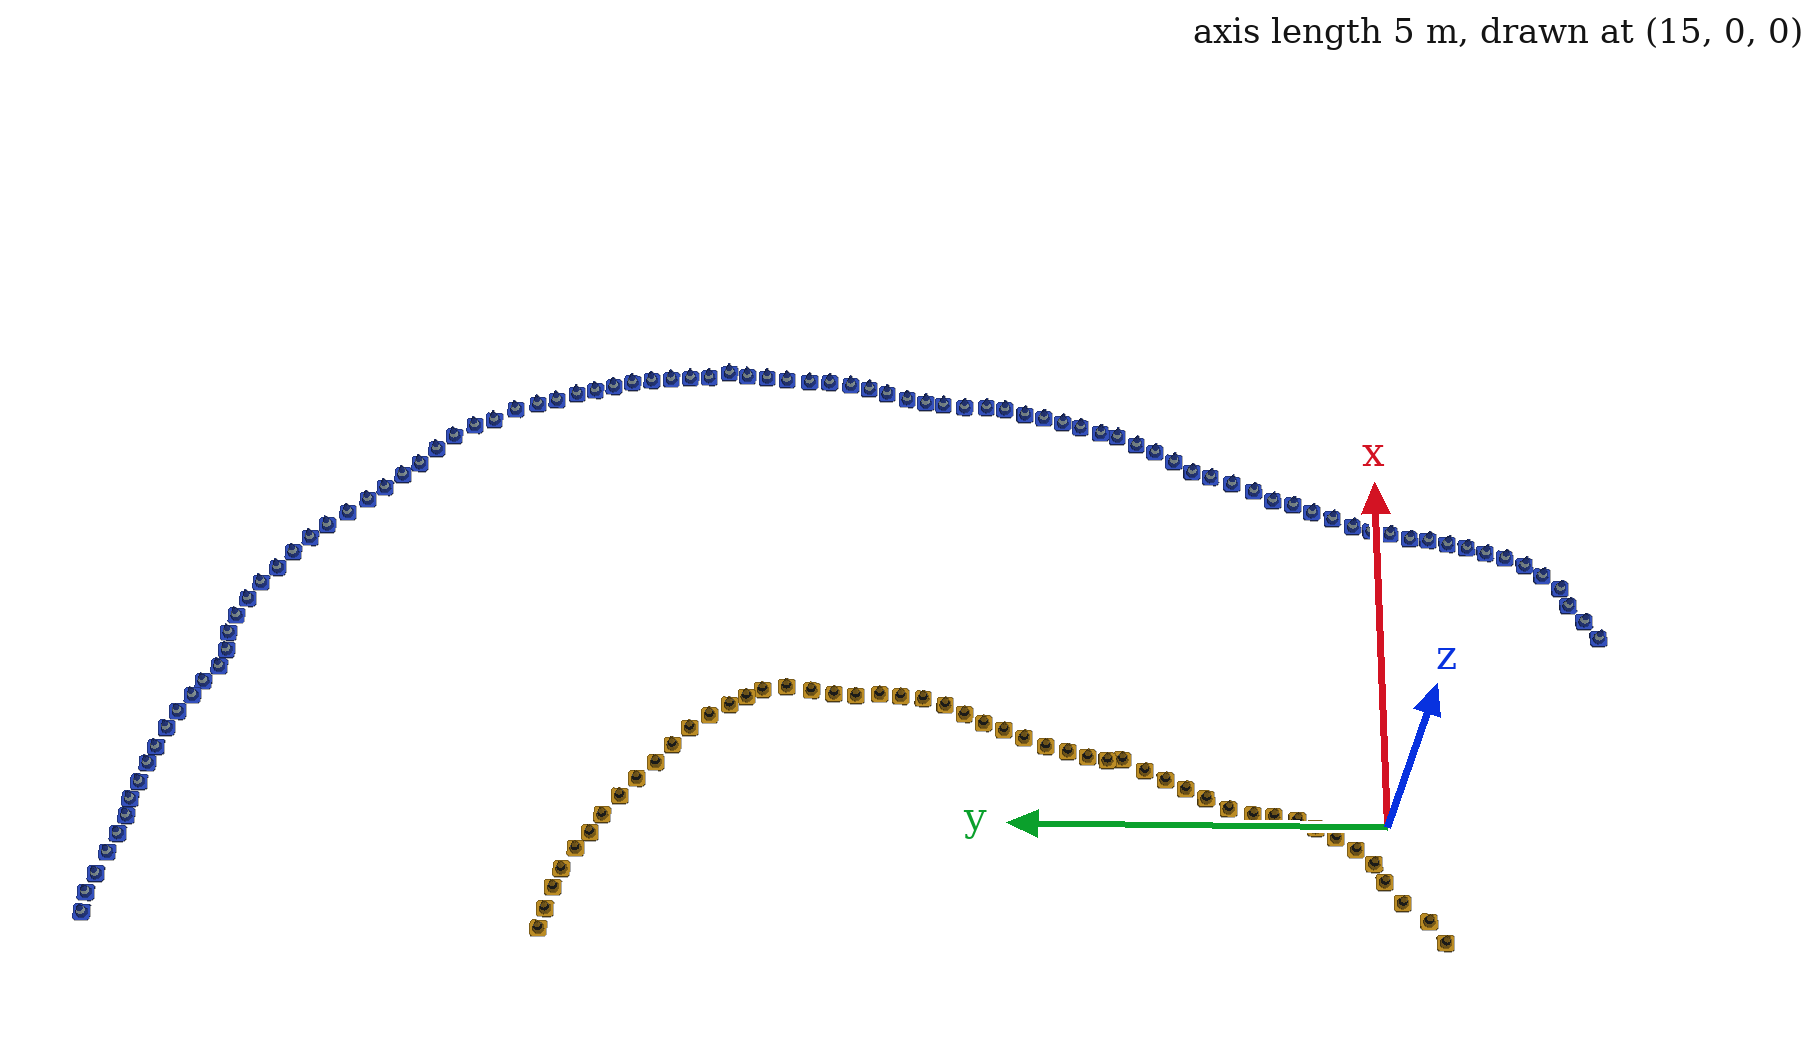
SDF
<sdf version="1.6">
 <model name="small_track">
  <link name="link_0_clone_0_clone_clone_clone_57">
   <pose>13.4277 11.0714 0.083534 0.001019 -0.000437 -0.000128</pose>
   <visual name="visual">
    <geometry><mesh><uri>model://eufs_description/meshes/cone_yellow.dae</uri></mesh></geometry>
    <material><shader type="pixel"/></material>
   </visual>
  </link>
  <link name="link_0_clone_0_clone_clone_clone_58">
   <pose>13.698 10.9948 0.083534 0.001019 -0.000437 -0.000128</pose>
   <visual name="visual">
    <geometry><mesh><uri>model://eufs_description/meshes/cone_yellow.dae</uri></mesh></geometry>
    <material><shader type="pixel"/></material>
   </visual>
  </link>
  <link name="link_0_clone_0_clone_clone_clone_59">
   <pose>13.9913 10.9033 0.083534 0.001019 -0.000437 -0.000128</pose>
   <visual name="visual">
    <geometry><mesh><uri>model://eufs_description/meshes/cone_yellow.dae</uri></mesh></geometry>
    <material><shader type="pixel"/></material>
   </visual>
  </link>
  <link name="link_0_clone_0_clone_clone_clone_60">
   <pose>14.2465 10.8048 0.083534 0.001019 -0.000437 -0.000128</pose>
   <visual name="visual">
    <geometry><mesh><uri>model://eufs_description/meshes/cone_yellow.dae</uri></mesh></geometry>
    <material><shader type="pixel"/></material>
   </visual>
  </link>
  <link name="link_0_clone_0_clone_clone_clone_61">
   <pose>14.5336 10.6322 0.083534 0.001019 -0.000437 -0.000128</pose>
   <visual name="visual">
    <geometry><mesh><uri>model://eufs_description/meshes/cone_yellow.dae</uri></mesh></geometry>
    <material><shader type="pixel"/></material>
   </visual>
  </link>
  <link name="link_0_clone_0_clone_clone_clone_62">
   <pose>14.7528 10.4528 0.083534 0.001019 -0.000437 -0.000128</pose>
   <visual name="visual">
    <geometry><mesh><uri>model://eufs_description/meshes/cone_yellow.dae</uri></mesh></geometry>
    <material><shader type="pixel"/></material>
   </visual>
  </link>
  <link name="link_0_clone_0_clone_clone_clone_63">
   <pose>15.0051 10.3006 0.083534 0.001019 -0.000437 -0.000128</pose>
   <visual name="visual">
    <geometry><mesh><uri>model://eufs_description/meshes/cone_yellow.dae</uri></mesh></geometry>
    <material><shader type="pixel"/></material>
   </visual>
  </link>
  <link name="link_0_clone_0_clone_clone_clone_64">
   <pose>15.5193 9.86586 0.083534 0.001019 -0.000437 -0.000128</pose>
   <visual name="visual">
    <geometry><mesh><uri>model://eufs_description/meshes/cone_yellow.dae</uri></mesh></geometry>
    <material><shader type="pixel"/></material>
   </visual>
  </link>
  <link name="link_0_clone_0_clone_clone_clone_65">
   <pose>15.7485 9.62299 0.083534 0.001019 -0.000437 -0.000128</pose>
   <visual name="visual">
    <geometry><mesh><uri>model://eufs_description/meshes/cone_yellow.dae</uri></mesh></geometry>
    <material><shader type="pixel"/></material>
   </visual>
  </link>
  <link name="link_0_clone_0_clone_clone_clone_66">
   <pose>15.9997 9.41122 0.083534 0.001019 -0.000437 -0.000128</pose>
   <visual name="visual">
    <geometry><mesh><uri>model://eufs_description/meshes/cone_yellow.dae</uri></mesh></geometry>
    <material><shader type="pixel"/></material>
   </visual>
  </link>
  <link name="link_0_clone_0_clone_clone_clone_67">
   <pose>16.2435 9.1883 0.083534 0.001019 -0.000437 -0.000128</pose>
   <visual name="visual">
    <geometry><mesh><uri>model://eufs_description/meshes/cone_yellow.dae</uri></mesh></geometry>
    <material><shader type="pixel"/></material>
   </visual>
  </link>
  <link name="link_0_clone_0_clone_clone_clone_68">
   <pose>16.4266 8.93302 0.083534 0.001019 -0.000437 -0.000128</pose>
   <visual name="visual">
    <geometry><mesh><uri>model://eufs_description/meshes/cone_yellow.dae</uri></mesh></geometry>
    <material><shader type="pixel"/></material>
   </visual>
  </link>
  <link name="link_0_clone_0_clone_clone_clone_69">
   <pose>16.5817 8.66908 0.083534 0.001019 -0.000437 -0.000128</pose>
   <visual name="visual">
    <geometry><mesh><uri>model://eufs_description/meshes/cone_yellow.dae</uri></mesh></geometry>
    <material><shader type="pixel"/></material>
   </visual>
  </link>
  <link name="link_0_clone_0_clone_clone_clone_70">
   <pose>16.697 8.44928 0.083534 0.001019 -0.000437 -0.000128</pose>
   <visual name="visual">
    <geometry><mesh><uri>model://eufs_description/meshes/cone_yellow.dae</uri></mesh></geometry>
    <material><shader type="pixel"/></material>
   </visual>
  </link>
  <link name="link_0_clone_0_clone_clone_clone_71">
   <pose>16.8486 7.91948 0.083534 0.001019 -0.000437 -0.000128</pose>
   <visual name="visual">
    <geometry><mesh><uri>model://eufs_description/meshes/cone_yellow.dae</uri></mesh></geometry>
    <material><shader type="pixel"/></material>
   </visual>
  </link>
  <link name="link_0_clone_0_clone_clone_clone_72">
   <pose>16.7994 7.59175 0.083534 0.001019 -0.000437 -0.000128</pose>
   <visual name="visual">
    <geometry><mesh><uri>model://eufs_description/meshes/cone_yellow.dae</uri></mesh></geometry>
    <material><shader type="pixel"/></material>
   </visual>
  </link>
  <link name="link_0_clone_0_clone_clone_clone_73">
   <pose>16.7576 7.28994 0.083534 0.001019 -0.000437 -0.000128</pose>
   <visual name="visual">
    <geometry><mesh><uri>model://eufs_description/meshes/cone_yellow.dae</uri></mesh></geometry>
    <material><shader type="pixel"/></material>
   </visual>
  </link>
  <link name="link_0_clone_0_clone_clone_clone_74">
   <pose>16.7338 7.00158 0.083534 0.001019 -0.000437 -0.000128</pose>
   <visual name="visual">
    <geometry><mesh><uri>model://eufs_description/meshes/cone_yellow.dae</uri></mesh></geometry>
    <material><shader type="pixel"/></material>
   </visual>
  </link>
  <link name="link_0_clone_0_clone_clone_clone_75">
   <pose>16.758 6.68601 0.083534 0.001019 -0.000437 -0.000128</pose>
   <visual name="visual">
    <geometry><mesh><uri>model://eufs_description/meshes/cone_yellow.dae</uri></mesh></geometry>
    <material><shader type="pixel"/></material>
   </visual>
  </link>
  <link name="link_0_clone_0_clone_clone_clone_76">
   <pose>16.731 6.40446 0.083534 0.001019 -0.000437 -0.000128</pose>
   <visual name="visual">
    <geometry><mesh><uri>model://eufs_description/meshes/cone_yellow.dae</uri></mesh></geometry>
    <material><shader type="pixel"/></material>
   </visual>
  </link>
  <link name="link_0_clone_0_clone_clone_clone_77">
   <pose>16.6162 5.81607 0.083534 0.001019 -0.000437 -0.000128</pose>
   <visual name="visual">
    <geometry><mesh><uri>model://eufs_description/meshes/cone_yellow.dae</uri></mesh></geometry>
    <material><shader type="pixel"/></material>
   </visual>
  </link>
  <link name="link_0_clone_0_clone_clone_clone_78">
   <pose>16.486 5.56298 0.083534 0.001019 -0.000437 -0.000128</pose>
   <visual name="visual">
    <geometry><mesh><uri>model://eufs_description/meshes/cone_yellow.dae</uri></mesh></geometry>
    <material><shader type="pixel"/></material>
   </visual>
  </link>
  <link name="link_0_clone_0_clone_clone_clone_79">
   <pose>16.3622 5.30817 0.083534 0.001019 -0.000437 -0.000128</pose>
   <visual name="visual">
    <geometry><mesh><uri>model://eufs_description/meshes/cone_yellow.dae</uri></mesh></geometry>
    <material><shader type="pixel"/></material>
   </visual>
  </link>
  <link name="link_0_clone_0_clone_clone_clone_80">
   <pose>16.2707 5.03968 0.083534 0.001019 -0.000437 -0.000128</pose>
   <visual name="visual">
    <geometry><mesh><uri>model://eufs_description/meshes/cone_yellow.dae</uri></mesh></geometry>
    <material><shader type="pixel"/></material>
   </visual>
  </link>
  <link name="link_0_clone_0_clone_clone_clone_81">
   <pose>16.1614 4.77403 0.083534 0.001019 -0.000437 -0.000128</pose>
   <visual name="visual">
    <geometry><mesh><uri>model://eufs_description/meshes/cone_yellow.dae</uri></mesh></geometry>
    <material><shader type="pixel"/></material>
   </visual>
  </link>
  <link name="link_0_clone_0_clone_clone_clone_82">
   <pose>16.0461 4.48814 0.083534 0.001019 -0.000437 -0.000128</pose>
   <visual name="visual">
    <geometry><mesh><uri>model://eufs_description/meshes/cone_yellow.dae</uri></mesh></geometry>
    <material><shader type="pixel"/></material>
   </visual>
  </link>
  <link name="link_0_clone_0_clone_clone_clone_83">
   <pose>15.9775 4.19783 0.083534 0.001019 -0.000437 -0.000128</pose>
   <visual name="visual">
    <geometry><mesh><uri>model://eufs_description/meshes/cone_yellow.dae</uri></mesh></geometry>
    <material><shader type="pixel"/></material>
   </visual>
  </link>
  <link name="link_0_clone_0_clone_clone_clone_84">
   <pose>15.9027 3.9368 0.083534 0.001019 -0.000437 -0.000128</pose>
   <visual name="visual">
    <geometry><mesh><uri>model://eufs_description/meshes/cone_yellow.dae</uri></mesh></geometry>
    <material><shader type="pixel"/></material>
   </visual>
  </link>
  <link name="link_0_clone_0_clone_clone_clone_85">
   <pose>15.8584 3.67754 0.083534 0.001019 -0.000437 -0.000128</pose>
   <visual name="visual">
    <geometry><mesh><uri>model://eufs_description/meshes/cone_yellow.dae</uri></mesh></geometry>
    <material><shader type="pixel"/></material>
   </visual>
  </link>
  <link name="link_0_clone_0_clone_clone_clone_86">
   <pose>15.7215 3.18695 0.083534 0.001019 -0.000437 -0.000128</pose>
   <visual name="visual">
    <geometry><mesh><uri>model://eufs_description/meshes/cone_yellow.dae</uri></mesh></geometry>
    <material><shader type="pixel"/></material>
   </visual>
  </link>
  <link name="link_0_clone_0_clone_clone_clone_87">
   <pose>15.594 2.91621 0.083534 0.001019 -0.000437 -0.000128</pose>
   <visual name="visual">
    <geometry><mesh><uri>model://eufs_description/meshes/cone_yellow.dae</uri></mesh></geometry>
    <material><shader type="pixel"/></material>
   </visual>
  </link>
  <link name="link_0_clone_0_clone_clone_clone_88">
   <pose>15.4719 2.65255 0.083534 0.001019 -0.000437 -0.000128</pose>
   <visual name="visual">
    <geometry><mesh><uri>model://eufs_description/meshes/cone_yellow.dae</uri></mesh></geometry>
    <material><shader type="pixel"/></material>
   </visual>
  </link>
  <link name="link_0_clone_0_clone_clone_clone_89">
   <pose>15.3405 2.38492 0.083534 0.001019 -0.000437 -0.000128</pose>
   <visual name="visual">
    <geometry><mesh><uri>model://eufs_description/meshes/cone_yellow.dae</uri></mesh></geometry>
    <material><shader type="pixel"/></material>
   </visual>
  </link>
  <link name="link_0_clone_0_clone_clone_clone_90">
   <pose>15.202 2.09582 0.083534 0.001019 -0.000437 -0.000128</pose>
   <visual name="visual">
    <geometry><mesh><uri>model://eufs_description/meshes/cone_yellow.dae</uri></mesh></geometry>
    <material><shader type="pixel"/></material>
   </visual>
  </link>
  <link name="link_0_clone_0_clone_clone_clone_91">
   <pose>15.1249 1.77613 0.083534 0.001019 -0.000437 -0.000128</pose>
   <visual name="visual">
    <geometry><mesh><uri>model://eufs_description/meshes/cone_yellow.dae</uri></mesh></geometry>
    <material><shader type="pixel"/></material>
   </visual>
  </link>
  <link name="link_0_clone_0_clone_clone_clone_92">
   <pose>15.0541 1.1972 0.083534 0.001019 -0.000437 -0.000128</pose>
   <visual name="visual">
    <geometry><mesh><uri>model://eufs_description/meshes/cone_yellow.dae</uri></mesh></geometry>
    <material><shader type="pixel"/></material>
   </visual>
  </link>
  <link name="link_0_clone_0_clone_clone_clone_93">
   <pose>14.9448 0.958641 0.083534 0.001019 -0.000437 -0.000128</pose>
   <visual name="visual">
    <geometry><mesh><uri>model://eufs_description/meshes/cone_yellow.dae</uri></mesh></geometry>
    <material><shader type="pixel"/></material>
   </visual>
  </link>
  <link name="link_0_clone_0_clone_clone_clone_94">
   <pose>14.8155 0.70317 0.083534 0.001019 -0.000437 -0.000128</pose>
   <visual name="visual">
    <geometry><mesh><uri>model://eufs_description/meshes/cone_yellow.dae</uri></mesh></geometry>
    <material><shader type="pixel"/></material>
   </visual>
  </link>
  <link name="link_0_clone_0_clone_clone_clone_95">
   <pose>14.6532 0.444382 0.083534 0.001019 -0.000437 -0.000128</pose>
   <visual name="visual">
    <geometry><mesh><uri>model://eufs_description/meshes/cone_yellow.dae</uri></mesh></geometry>
    <material><shader type="pixel"/></material>
   </visual>
  </link>
  <link name="link_0_clone_0_clone_clone_clone_96">
   <pose>14.4572 0.215121 0.083534 0.001019 -0.000437 -0.000128</pose>
   <visual name="visual">
    <geometry><mesh><uri>model://eufs_description/meshes/cone_yellow.dae</uri></mesh></geometry>
    <material><shader type="pixel"/></material>
   </visual>
  </link>
  <link name="link_0_clone_0_clone_clone_clone_97">
   <pose>14.2076 0.08526 0.083534 0.001019 -0.000437 -0.000128</pose>
   <visual name="visual">
    <geometry><mesh><uri>model://eufs_description/meshes/cone_yellow.dae</uri></mesh></geometry>
    <material><shader type="pixel"/></material>
   </visual>
  </link>
  <link name="link_0_clone_0_clone_clone_clone_98">
   <pose>13.9222 -0.138985 0.083534 0.001019 -0.000437 -0.000128</pose>
   <visual name="visual">
    <geometry><mesh><uri>model://eufs_description/meshes/cone_yellow.dae</uri></mesh></geometry>
    <material><shader type="pixel"/></material>
   </visual>
  </link>
  <link name="link_0_clone_0_clone_clone_clone_99">
   <pose>13.3874 -0.675219 0.083534 0.001019 -0.000437 -0.000128</pose>
   <visual name="visual">
    <geometry><mesh><uri>model://eufs_description/meshes/cone_yellow.dae</uri></mesh></geometry>
    <material><shader type="pixel"/></material>
   </visual>
  </link>
  <link name="link_0_clone_15">
   <pose>15.1389 16.5025 0.082223 0 -0 0</pose>
   <visual name="visual">
    <geometry><mesh><uri>model://eufs_description/meshes/cone_blue.dae</uri></mesh></geometry>
    <material><shader type="pixel"/></material>
   </visual>
  </link>
  <link name="link_0_clone_16">
   <pose>15.2725 10.0791 0.08035 0 -0 0</pose>
   <visual name="visual">
    <geometry><mesh><uri>model://eufs_description/meshes/cone_yellow.dae</uri></mesh></geometry>
    <material><shader type="pixel"/></material>
   </visual>
  </link>
  <link name="link_0_clone_17">
   <pose>19.5034 13.6361 0.079669 0 -0 0</pose>
   <visual name="visual">
    <geometry><mesh><uri>model://eufs_description/meshes/cone_blue.dae</uri></mesh></geometry>
    <material><shader type="pixel"/></material>
   </visual>
  </link>
  <link name="link_0_clone_17_clone">
   <pose>20.8922 11.7012 0.056623 -0.001555 0.00019 -5.2e-05</pose>
   <visual name="visual">
    <geometry><mesh><uri>model://eufs_description/meshes/cone_blue.dae</uri></mesh></geometry>
    <material><shader type="pixel"/></material>
   </visual>
  </link>
  <link name="link_0_clone_17_clone_0">
   <pose>17.5221 15.3812 0.082077 -0.001555 0.00019 -5.2e-05</pose>
   <visual name="visual">
    <geometry><mesh><uri>model://eufs_description/meshes/cone_blue.dae</uri></mesh></geometry>
    <material><shader type="pixel"/></material>
   </visual>
  </link>
  <link name="link_0_clone_18">
   <pose>16.8037 8.23821 0.079433 0 -0 0</pose>
   <visual name="visual">
    <geometry><mesh><uri>model://eufs_description/meshes/cone_yellow.dae</uri></mesh></geometry>
    <material><shader type="pixel"/></material>
   </visual>
  </link>
  <link name="link_0_clone_19">
   <pose>21.4761 8.79574 0.079001 0 -0 0</pose>
   <visual name="visual">
    <geometry><mesh><uri>model://eufs_description/meshes/cone_blue.dae</uri></mesh></geometry>
    <material><shader type="pixel"/></material>
   </visual>
  </link>
  <link name="link_0_clone_20">
   <pose>20.9992 5.27662 0.079001 0 -0 0</pose>
   <visual name="visual">
    <geometry><mesh><uri>model://eufs_description/meshes/cone_blue.dae</uri></mesh></geometry>
    <material><shader type="pixel"/></material>
   </visual>
  </link>
  <link name="link_0_clone_21">
   <pose>16.7063 6.10772 0.079001 0 -0 0</pose>
   <visual name="visual">
    <geometry><mesh><uri>model://eufs_description/meshes/cone_yellow.dae</uri></mesh></geometry>
    <material><shader type="pixel"/></material>
   </visual>
  </link>
  <link name="link_0_clone_22">
   <pose>19.9925 2.24053 0.079001 0 -0 0</pose>
   <visual name="visual">
    <geometry><mesh><uri>model://eufs_description/meshes/cone_blue.dae</uri></mesh></geometry>
    <material><shader type="pixel"/></material>
   </visual>
  </link>
  <link name="link_0_clone_23">
   <pose>15.876 3.47906 0.079001 0 -0 0</pose>
   <visual name="visual">
    <geometry><mesh><uri>model://eufs_description/meshes/cone_yellow.dae</uri></mesh></geometry>
    <material><shader type="pixel"/></material>
   </visual>
  </link>
  <link name="link_0_clone_24">
   <pose>15.106 1.5027 0.079001 0 -0 0</pose>
   <visual name="visual">
    <geometry><mesh><uri>model://eufs_description/meshes/cone_yellow.dae</uri></mesh></geometry>
    <material><shader type="pixel"/></material>
   </visual>
  </link>
  <link name="link_0_clone_25">
   <pose>19.0983 -0.671871 0.079001 0 -0 0</pose>
   <visual name="visual">
    <geometry><mesh><uri>model://eufs_description/meshes/cone_blue.dae</uri></mesh></geometry>
    <material><shader type="pixel"/></material>
   </visual>
  </link>
  <link name="link_0_clone_26">
   <pose>13.6765 -0.472612 0.079001 0 -0 0</pose>
   <visual name="visual">
    <geometry><mesh><uri>model://eufs_description/meshes/cone_yellow.dae</uri></mesh></geometry>
    <material><shader type="pixel"/></material>
   </visual>
  </link>
  <link name="link_0_clone_62_clone_100">
   <pose>15.652 16.317 0.063291 -0.001555 0.00019 -5.2e-05</pose>
   <visual name="visual">
    <geometry><mesh><uri>model://eufs_description/meshes/cone_blue.dae</uri></mesh></geometry>
    <material><shader type="pixel"/></material>
   </visual>
  </link>
  <link name="link_0_clone_62_clone_101">
   <pose>15.883 16.2254 0.063291 -0.001555 0.00019 -5.2e-05</pose>
   <visual name="visual">
    <geometry><mesh><uri>model://eufs_description/meshes/cone_blue.dae</uri></mesh></geometry>
    <material><shader type="pixel"/></material>
   </visual>
  </link>
  <link name="link_0_clone_62_clone_102">
   <pose>16.1555 16.1042 0.063291 -0.001555 0.00019 -5.2e-05</pose>
   <visual name="visual">
    <geometry><mesh><uri>model://eufs_description/meshes/cone_blue.dae</uri></mesh></geometry>
    <material><shader type="pixel"/></material>
   </visual>
  </link>
  <link name="link_0_clone_62_clone_103">
   <pose>16.388 15.9757 0.063291 -0.001555 0.00019 -5.2e-05</pose>
   <visual name="visual">
    <geometry><mesh><uri>model://eufs_description/meshes/cone_blue.dae</uri></mesh></geometry>
    <material><shader type="pixel"/></material>
   </visual>
  </link>
  <link name="link_0_clone_62_clone_104">
   <pose>16.623 15.7962 0.063291 -0.001555 0.00019 -5.2e-05</pose>
   <visual name="visual">
    <geometry><mesh><uri>model://eufs_description/meshes/cone_blue.dae</uri></mesh></geometry>
    <material><shader type="pixel"/></material>
   </visual>
  </link>
  <link name="link_0_clone_62_clone_105">
   <pose>16.8233 15.6671 0.063291 -0.001555 0.00019 -5.2e-05</pose>
   <visual name="visual">
    <geometry><mesh><uri>model://eufs_description/meshes/cone_blue.dae</uri></mesh></geometry>
    <material><shader type="pixel"/></material>
   </visual>
  </link>
  <link name="link_0_clone_62_clone_106">
   <pose>17.0427 15.4738 0.063291 -0.001555 0.00019 -5.2e-05</pose>
   <visual name="visual">
    <geometry><mesh><uri>model://eufs_description/meshes/cone_blue.dae</uri></mesh></geometry>
    <material><shader type="pixel"/></material>
   </visual>
  </link>
  <link name="link_0_clone_62_clone_107">
   <pose>17.2817 15.3918 0.063291 -0.001555 0.00019 -5.2e-05</pose>
   <visual name="visual">
    <geometry><mesh><uri>model://eufs_description/meshes/cone_blue.dae</uri></mesh></geometry>
    <material><shader type="pixel"/></material>
   </visual>
  </link>
  <link name="link_0_clone_62_clone_108">
   <pose>17.7812 15.2964 0.063291 -0.001555 0.00019 -5.2e-05</pose>
   <visual name="visual">
    <geometry><mesh><uri>model://eufs_description/meshes/cone_blue.dae</uri></mesh></geometry>
    <material><shader type="pixel"/></material>
   </visual>
  </link>
  <link name="link_0_clone_62_clone_109">
   <pose>18.0284 15.1606 0.063291 -0.001555 0.00019 -5.2e-05</pose>
   <visual name="visual">
    <geometry><mesh><uri>model://eufs_description/meshes/cone_blue.dae</uri></mesh></geometry>
    <material><shader type="pixel"/></material>
   </visual>
  </link>
  <link name="link_0_clone_62_clone_110">
   <pose>18.2666 15.0007 0.063291 -0.001555 0.00019 -5.2e-05</pose>
   <visual name="visual">
    <geometry><mesh><uri>model://eufs_description/meshes/cone_blue.dae</uri></mesh></geometry>
    <material><shader type="pixel"/></material>
   </visual>
  </link>
  <link name="link_0_clone_62_clone_111">
   <pose>18.485 14.7917 0.063291 -0.001555 0.00019 -5.2e-05</pose>
   <visual name="visual">
    <geometry><mesh><uri>model://eufs_description/meshes/cone_blue.dae</uri></mesh></geometry>
    <material><shader type="pixel"/></material>
   </visual>
  </link>
  <link name="link_0_clone_62_clone_112">
   <pose>18.7184 14.5972 0.063291 -0.001555 0.00019 -5.2e-05</pose>
   <visual name="visual">
    <geometry><mesh><uri>model://eufs_description/meshes/cone_blue.dae</uri></mesh></geometry>
    <material><shader type="pixel"/></material>
   </visual>
  </link>
  <link name="link_0_clone_62_clone_113">
   <pose>18.9345 14.3827 0.063291 -0.001555 0.00019 -5.2e-05</pose>
   <visual name="visual">
    <geometry><mesh><uri>model://eufs_description/meshes/cone_blue.dae</uri></mesh></geometry>
    <material><shader type="pixel"/></material>
   </visual>
  </link>
  <link name="link_0_clone_62_clone_114">
   <pose>19.1237 14.1614 0.063291 -0.001555 0.00019 -5.2e-05</pose>
   <visual name="visual">
    <geometry><mesh><uri>model://eufs_description/meshes/cone_blue.dae</uri></mesh></geometry>
    <material><shader type="pixel"/></material>
   </visual>
  </link>
  <link name="link_0_clone_62_clone_115">
   <pose>19.3147 13.899 0.063291 -0.001555 0.00019 -5.2e-05</pose>
   <visual name="visual">
    <geometry><mesh><uri>model://eufs_description/meshes/cone_blue.dae</uri></mesh></geometry>
    <material><shader type="pixel"/></material>
   </visual>
  </link>
  <link name="link_0_clone_62_clone_116">
   <pose>19.6912 13.4165 0.063291 -0.001555 0.00019 -5.2e-05</pose>
   <visual name="visual">
    <geometry><mesh><uri>model://eufs_description/meshes/cone_blue.dae</uri></mesh></geometry>
    <material><shader type="pixel"/></material>
   </visual>
  </link>
  <link name="link_0_clone_62_clone_117">
   <pose>19.8843 13.1859 0.063291 -0.001555 0.00019 -5.2e-05</pose>
   <visual name="visual">
    <geometry><mesh><uri>model://eufs_description/meshes/cone_blue.dae</uri></mesh></geometry>
    <material><shader type="pixel"/></material>
   </visual>
  </link>
  <link name="link_0_clone_62_clone_118">
   <pose>20.0544 12.9644 0.063291 -0.001555 0.00019 -5.2e-05</pose>
   <visual name="visual">
    <geometry><mesh><uri>model://eufs_description/meshes/cone_blue.dae</uri></mesh></geometry>
    <material><shader type="pixel"/></material>
   </visual>
  </link>
  <link name="link_0_clone_62_clone_119">
   <pose>20.2795 12.7482 0.063291 -0.001555 0.00019 -5.2e-05</pose>
   <visual name="visual">
    <geometry><mesh><uri>model://eufs_description/meshes/cone_blue.dae</uri></mesh></geometry>
    <material><shader type="pixel"/></material>
   </visual>
  </link>
  <link name="link_0_clone_62_clone_120">
   <pose>20.4779 12.5173 0.063291 -0.001555 0.00019 -5.2e-05</pose>
   <visual name="visual">
    <geometry><mesh><uri>model://eufs_description/meshes/cone_blue.dae</uri></mesh></geometry>
    <material><shader type="pixel"/></material>
   </visual>
  </link>
  <link name="link_0_clone_62_clone_121">
   <pose>20.6383 12.2459 0.063291 -0.001555 0.00019 -5.2e-05</pose>
   <visual name="visual">
    <geometry><mesh><uri>model://eufs_description/meshes/cone_blue.dae</uri></mesh></geometry>
    <material><shader type="pixel"/></material>
   </visual>
  </link>
  <link name="link_0_clone_62_clone_122">
   <pose>20.7263 11.9843 0.063291 -0.001555 0.00019 -5.2e-05</pose>
   <visual name="visual">
    <geometry><mesh><uri>model://eufs_description/meshes/cone_blue.dae</uri></mesh></geometry>
    <material><shader type="pixel"/></material>
   </visual>
  </link>
  <link name="link_0_clone_62_clone_123">
   <pose>20.974 11.4027 0.063291 -0.001555 0.00019 -5.2e-05</pose>
   <visual name="visual">
    <geometry><mesh><uri>model://eufs_description/meshes/cone_blue.dae</uri></mesh></geometry>
    <material><shader type="pixel"/></material>
   </visual>
  </link>
  <link name="link_0_clone_62_clone_124">
   <pose>21.0374 11.1447 0.063291 -0.001555 0.00019 -5.2e-05</pose>
   <visual name="visual">
    <geometry><mesh><uri>model://eufs_description/meshes/cone_blue.dae</uri></mesh></geometry>
    <material><shader type="pixel"/></material>
   </visual>
  </link>
  <link name="link_0_clone_62_clone_125">
   <pose>21.1369 10.8726 0.063291 -0.001555 0.00019 -5.2e-05</pose>
   <visual name="visual">
    <geometry><mesh><uri>model://eufs_description/meshes/cone_blue.dae</uri></mesh></geometry>
    <material><shader type="pixel"/></material>
   </visual>
  </link>
  <link name="link_0_clone_62_clone_126">
   <pose>21.1913 10.6235 0.063291 -0.001555 0.00019 -5.2e-05</pose>
   <visual name="visual">
    <geometry><mesh><uri>model://eufs_description/meshes/cone_blue.dae</uri></mesh></geometry>
    <material><shader type="pixel"/></material>
   </visual>
  </link>
  <link name="link_0_clone_62_clone_127">
   <pose>21.2543 10.3731 0.063291 -0.001555 0.00019 -5.2e-05</pose>
   <visual name="visual">
    <geometry><mesh><uri>model://eufs_description/meshes/cone_blue.dae</uri></mesh></geometry>
    <material><shader type="pixel"/></material>
   </visual>
  </link>
  <link name="link_0_clone_62_clone_128">
   <pose>21.3181 10.1199 0.063291 -0.001555 0.00019 -5.2e-05</pose>
   <visual name="visual">
    <geometry><mesh><uri>model://eufs_description/meshes/cone_blue.dae</uri></mesh></geometry>
    <material><shader type="pixel"/></material>
   </visual>
  </link>
  <link name="link_0_clone_62_clone_129">
   <pose>21.3532 9.8575 0.063291 -0.001555 0.00019 -5.2e-05</pose>
   <visual name="visual">
    <geometry><mesh><uri>model://eufs_description/meshes/cone_blue.dae</uri></mesh></geometry>
    <material><shader type="pixel"/></material>
   </visual>
  </link>
  <link name="link_0_clone_62_clone_130">
   <pose>21.3775 9.59016 0.063291 -0.001555 0.00019 -5.2e-05</pose>
   <visual name="visual">
    <geometry><mesh><uri>model://eufs_description/meshes/cone_blue.dae</uri></mesh></geometry>
    <material><shader type="pixel"/></material>
   </visual>
  </link>
  <link name="link_0_clone_62_clone_131">
   <pose>21.3988 9.32834 0.063291 -0.001555 0.00019 -5.2e-05</pose>
   <visual name="visual">
    <geometry><mesh><uri>model://eufs_description/meshes/cone_blue.dae</uri></mesh></geometry>
    <material><shader type="pixel"/></material>
   </visual>
  </link>
  <link name="link_0_clone_62_clone_132">
   <pose>21.411 9.0717 0.063291 -0.001555 0.00019 -5.2e-05</pose>
   <visual name="visual">
    <geometry><mesh><uri>model://eufs_description/meshes/cone_blue.dae</uri></mesh></geometry>
    <material><shader type="pixel"/></material>
   </visual>
  </link>
  <link name="link_0_clone_62_clone_133">
   <pose>21.4371 8.54801 0.063291 -0.001555 0.00019 -5.2e-05</pose>
   <visual name="visual">
    <geometry><mesh><uri>model://eufs_description/meshes/cone_blue.dae</uri></mesh></geometry>
    <material><shader type="pixel"/></material>
   </visual>
  </link>
  <link name="link_0_clone_62_clone_134">
   <pose>21.4178 8.27854 0.063291 -0.001555 0.00019 -5.2e-05</pose>
   <visual name="visual">
    <geometry><mesh><uri>model://eufs_description/meshes/cone_blue.dae</uri></mesh></geometry>
    <material><shader type="pixel"/></material>
   </visual>
  </link>
  <link name="link_0_clone_62_clone_135">
   <pose>21.3869 8.0077 0.063291 -0.001555 0.00019 -5.2e-05</pose>
   <visual name="visual">
    <geometry><mesh><uri>model://eufs_description/meshes/cone_blue.dae</uri></mesh></geometry>
    <material><shader type="pixel"/></material>
   </visual>
  </link>
  <link name="link_0_clone_62_clone_136">
   <pose>21.3643 7.69642 0.063291 -0.001555 0.00019 -5.2e-05</pose>
   <visual name="visual">
    <geometry><mesh><uri>model://eufs_description/meshes/cone_blue.dae</uri></mesh></geometry>
    <material><shader type="pixel"/></material>
   </visual>
  </link>
  <link name="link_0_clone_62_clone_137">
   <pose>21.3572 7.42115 0.063291 -0.001555 0.00019 -5.2e-05</pose>
   <visual name="visual">
    <geometry><mesh><uri>model://eufs_description/meshes/cone_blue.dae</uri></mesh></geometry>
    <material><shader type="pixel"/></material>
   </visual>
  </link>
  <link name="link_0_clone_62_clone_138">
   <pose>21.3214 7.13253 0.063291 -0.001555 0.00019 -5.2e-05</pose>
   <visual name="visual">
    <geometry><mesh><uri>model://eufs_description/meshes/cone_blue.dae</uri></mesh></geometry>
    <material><shader type="pixel"/></material>
   </visual>
  </link>
  <link name="link_0_clone_62_clone_139">
   <pose>21.2664 6.87774 0.063291 -0.001555 0.00019 -5.2e-05</pose>
   <visual name="visual">
    <geometry><mesh><uri>model://eufs_description/meshes/cone_blue.dae</uri></mesh></geometry>
    <material><shader type="pixel"/></material>
   </visual>
  </link>
  <link name="link_0_clone_62_clone_140">
   <pose>21.1988 6.63401 0.063291 -0.001555 0.00019 -5.2e-05</pose>
   <visual name="visual">
    <geometry><mesh><uri>model://eufs_description/meshes/cone_blue.dae</uri></mesh></geometry>
    <material><shader type="pixel"/></material>
   </visual>
  </link>
  <link name="link_0_clone_62_clone_141">
   <pose>21.1156 6.36 0.063291 -0.001555 0.00019 -5.2e-05</pose>
   <visual name="visual">
    <geometry><mesh><uri>model://eufs_description/meshes/cone_blue.dae</uri></mesh></geometry>
    <material><shader type="pixel"/></material>
   </visual>
  </link>
  <link name="link_0_clone_62_clone_142">
   <pose>21.0663 6.1056 0.063291 -0.001555 0.00019 -5.2e-05</pose>
   <visual name="visual">
    <geometry><mesh><uri>model://eufs_description/meshes/cone_blue.dae</uri></mesh></geometry>
    <material><shader type="pixel"/></material>
   </visual>
  </link>
  <link name="link_0_clone_62_clone_143">
   <pose>21.0394 5.86406 0.063291 -0.001555 0.00019 -5.2e-05</pose>
   <visual name="visual">
    <geometry><mesh><uri>model://eufs_description/meshes/cone_blue.dae</uri></mesh></geometry>
    <material><shader type="pixel"/></material>
   </visual>
  </link>
  <link name="link_0_clone_62_clone_144">
   <pose>21.0037 5.57534 0.063291 -0.001555 0.00019 -5.2e-05</pose>
   <visual name="visual">
    <geometry><mesh><uri>model://eufs_description/meshes/cone_blue.dae</uri></mesh></geometry>
    <material><shader type="pixel"/></material>
   </visual>
  </link>
  <link name="link_0_clone_62_clone_145">
   <pose>20.9806 5.02505 0.063291 -0.001555 0.00019 -5.2e-05</pose>
   <visual name="visual">
    <geometry><mesh><uri>model://eufs_description/meshes/cone_blue.dae</uri></mesh></geometry>
    <material><shader type="pixel"/></material>
   </visual>
  </link>
  <link name="link_0_clone_62_clone_146">
   <pose>20.9069 4.751 0.063291 -0.001555 0.00019 -5.2e-05</pose>
   <visual name="visual">
    <geometry><mesh><uri>model://eufs_description/meshes/cone_blue.dae</uri></mesh></geometry>
    <material><shader type="pixel"/></material>
   </visual>
  </link>
  <link name="link_0_clone_62_clone_147">
   <pose>20.8566 4.49474 0.063291 -0.001555 0.00019 -5.2e-05</pose>
   <visual name="visual">
    <geometry><mesh><uri>model://eufs_description/meshes/cone_blue.dae</uri></mesh></geometry>
    <material><shader type="pixel"/></material>
   </visual>
  </link>
  <link name="link_0_clone_62_clone_148">
   <pose>20.79 4.23737 0.063291 -0.001555 0.00019 -5.2e-05</pose>
   <visual name="visual">
    <geometry><mesh><uri>model://eufs_description/meshes/cone_blue.dae</uri></mesh></geometry>
    <material><shader type="pixel"/></material>
   </visual>
  </link>
  <link name="link_0_clone_62_clone_149">
   <pose>20.7226 3.99635 0.063291 -0.001555 0.00019 -5.2e-05</pose>
   <visual name="visual">
    <geometry><mesh><uri>model://eufs_description/meshes/cone_blue.dae</uri></mesh></geometry>
    <material><shader type="pixel"/></material>
   </visual>
  </link>
  <link name="link_0_clone_62_clone_150">
   <pose>20.6406 3.72182 0.063291 -0.001555 0.00019 -5.2e-05</pose>
   <visual name="visual">
    <geometry><mesh><uri>model://eufs_description/meshes/cone_blue.dae</uri></mesh></geometry>
    <material><shader type="pixel"/></material>
   </visual>
  </link>
  <link name="link_0_clone_62_clone_151">
   <pose>20.5886 3.49797 0.063291 -0.001555 0.00019 -5.2e-05</pose>
   <visual name="visual">
    <geometry><mesh><uri>model://eufs_description/meshes/cone_blue.dae</uri></mesh></geometry>
    <material><shader type="pixel"/></material>
   </visual>
  </link>
  <link name="link_0_clone_62_clone_152">
   <pose>20.4728 3.23781 0.063291 -0.001555 0.00019 -5.2e-05</pose>
   <visual name="visual">
    <geometry><mesh><uri>model://eufs_description/meshes/cone_blue.dae</uri></mesh></geometry>
    <material><shader type="pixel"/></material>
   </visual>
  </link>
  <link name="link_0_clone_62_clone_153">
   <pose>20.3654 2.98619 0.063291 -0.001555 0.00019 -5.2e-05</pose>
   <visual name="visual">
    <geometry><mesh><uri>model://eufs_description/meshes/cone_blue.dae</uri></mesh></geometry>
    <material><shader type="pixel"/></material>
   </visual>
  </link>
  <link name="link_0_clone_62_clone_154">
   <pose>20.2245 2.73265 0.063291 -0.001555 0.00019 -5.2e-05</pose>
   <visual name="visual">
    <geometry><mesh><uri>model://eufs_description/meshes/cone_blue.dae</uri></mesh></geometry>
    <material><shader type="pixel"/></material>
   </visual>
  </link>
  <link name="link_0_clone_62_clone_155">
   <pose>20.0758 2.48676 0.063291 -0.001555 0.00019 -5.2e-05</pose>
   <visual name="visual">
    <geometry><mesh><uri>model://eufs_description/meshes/cone_blue.dae</uri></mesh></geometry>
    <material><shader type="pixel"/></material>
   </visual>
  </link>
  <link name="link_0_clone_62_clone_156">
   <pose>19.9071 1.95107 0.063291 -0.001555 0.00019 -5.2e-05</pose>
   <visual name="visual">
    <geometry><mesh><uri>model://eufs_description/meshes/cone_blue.dae</uri></mesh></geometry>
    <material><shader type="pixel"/></material>
   </visual>
  </link>
  <link name="link_0_clone_62_clone_157">
   <pose>19.8017 1.65875 0.063291 -0.001555 0.00019 -5.2e-05</pose>
   <visual name="visual">
    <geometry><mesh><uri>model://eufs_description/meshes/cone_blue.dae</uri></mesh></geometry>
    <material><shader type="pixel"/></material>
   </visual>
  </link>
  <link name="link_0_clone_62_clone_158">
   <pose>19.6616 1.40527 0.063291 -0.001555 0.00019 -5.2e-05</pose>
   <visual name="visual">
    <geometry><mesh><uri>model://eufs_description/meshes/cone_blue.dae</uri></mesh></geometry>
    <material><shader type="pixel"/></material>
   </visual>
  </link>
  <link name="link_0_clone_62_clone_159">
   <pose>19.6043 1.13212 0.063291 -0.001555 0.00019 -5.2e-05</pose>
   <visual name="visual">
    <geometry><mesh><uri>model://eufs_description/meshes/cone_blue.dae</uri></mesh></geometry>
    <material><shader type="pixel"/></material>
   </visual>
  </link>
  <link name="link_0_clone_62_clone_160">
   <pose>19.4964 0.880514 0.063291 -0.001555 0.00019 -5.2e-05</pose>
   <visual name="visual">
    <geometry><mesh><uri>model://eufs_description/meshes/cone_blue.dae</uri></mesh></geometry>
    <material><shader type="pixel"/></material>
   </visual>
  </link>
  <link name="link_0_clone_62_clone_161">
   <pose>19.4063 0.605422 0.063291 -0.001555 0.00019 -5.2e-05</pose>
   <visual name="visual">
    <geometry><mesh><uri>model://eufs_description/meshes/cone_blue.dae</uri></mesh></geometry>
    <material><shader type="pixel"/></material>
   </visual>
  </link>
  <link name="link_0_clone_62_clone_162">
   <pose>19.2912 0.337014 0.063291 -0.001555 0.00019 -5.2e-05</pose>
   <visual name="visual">
    <geometry><mesh><uri>model://eufs_description/meshes/cone_blue.dae</uri></mesh></geometry>
    <material><shader type="pixel"/></material>
   </visual>
  </link>
  <link name="link_0_clone_62_clone_163">
   <pose>19.2323 0.088262 0.063291 -0.001555 0.00019 -5.2e-05</pose>
   <visual name="visual">
    <geometry><mesh><uri>model://eufs_description/meshes/cone_blue.dae</uri></mesh></geometry>
    <material><shader type="pixel"/></material>
   </visual>
  </link>
  <link name="link_0_clone_62_clone_164">
   <pose>19.1899 -0.159536 0.063291 -0.001555 0.00019 -5.2e-05</pose>
   <visual name="visual">
    <geometry><mesh><uri>model://eufs_description/meshes/cone_blue.dae</uri></mesh></geometry>
    <material><shader type="pixel"/></material>
   </visual>
  </link>
  <link name="link_0_clone_62_clone_165">
   <pose>19.1236 -0.42511 0.063291 -0.001555 0.00019 -5.2e-05</pose>
   <visual name="visual">
    <geometry><mesh><uri>model://eufs_description/meshes/cone_blue.dae</uri></mesh></geometry>
    <material><shader type="pixel"/></material>
   </visual>
  </link>
  <link name="link_0_clone_62_clone_166">
   <pose>19.0505 -0.92987 0.063291 -0.001555 0.00019 -5.2e-05</pose>
   <visual name="visual">
    <geometry><mesh><uri>model://eufs_description/meshes/cone_blue.dae</uri></mesh></geometry>
    <material><shader type="pixel"/></material>
   </visual>
  </link>
  <link name="link_0_clone_62_clone_167">
   <pose>19.0001 -1.1863 0.063291 -0.001555 0.00019 -5.2e-05</pose>
   <visual name="visual">
    <geometry><mesh><uri>model://eufs_description/meshes/cone_blue.dae</uri></mesh></geometry>
    <material><shader type="pixel"/></material>
   </visual>
  </link>
  <link name="link_0_clone_62_clone_168">
   <pose>18.925 -1.43603 0.063291 -0.001555 0.00019 -5.2e-05</pose>
   <visual name="visual">
    <geometry><mesh><uri>model://eufs_description/meshes/cone_blue.dae</uri></mesh></geometry>
    <material><shader type="pixel"/></material>
   </visual>
  </link>
  <link name="link_0_clone_62_clone_169">
   <pose>18.8585 -1.69344 0.063291 -0.001555 0.00019 -5.2e-05</pose>
   <visual name="visual">
    <geometry><mesh><uri>model://eufs_description/meshes/cone_blue.dae</uri></mesh></geometry>
    <material><shader type="pixel"/></material>
   </visual>
  </link>
  <link name="link_0_clone_62_clone_170">
   <pose>18.7512 -1.95324 0.063291 -0.001555 0.00019 -5.2e-05</pose>
   <visual name="visual">
    <geometry><mesh><uri>model://eufs_description/meshes/cone_blue.dae</uri></mesh></geometry>
    <material><shader type="pixel"/></material>
   </visual>
  </link>
  <link name="link_0_clone_62_clone_171">
   <pose>18.6011 -2.18291 0.063291 -0.001555 0.00019 -5.2e-05</pose>
   <visual name="visual">
    <geometry><mesh><uri>model://eufs_description/meshes/cone_blue.dae</uri></mesh></geometry>
    <material><shader type="pixel"/></material>
   </visual>
  </link>
  <link name="link_0_clone_62_clone_172">
   <pose>18.4185 -2.41447 0.063291 -0.001555 0.00019 -5.2e-05</pose>
   <visual name="visual">
    <geometry><mesh><uri>model://eufs_description/meshes/cone_blue.dae</uri></mesh></geometry>
    <material><shader type="pixel"/></material>
   </visual>
  </link>
  <link name="link_0_clone_62_clone_173">
   <pose>18.1706 -2.51083 0.063291 -0.001555 0.00019 -5.2e-05</pose>
   <visual name="visual">
    <geometry><mesh><uri>model://eufs_description/meshes/cone_blue.dae</uri></mesh></geometry>
    <material><shader type="pixel"/></material>
   </visual>
  </link>
  <link name="link_0_clone_62_clone_174">
   <pose>17.9453 -2.71217 0.063291 -0.001555 0.00019 -5.2e-05</pose>
   <visual name="visual">
    <geometry><mesh><uri>model://eufs_description/meshes/cone_blue.dae</uri></mesh></geometry>
    <material><shader type="pixel"/></material>
   </visual>
  </link>
  <link name="link_0_clone_62_clone_175">
   <pose>17.7022 -2.89004 0.063291 -0.001555 0.00019 -5.2e-05</pose>
   <visual name="visual">
    <geometry><mesh><uri>model://eufs_description/meshes/cone_blue.dae</uri></mesh></geometry>
    <material><shader type="pixel"/></material>
   </visual>
  </link>
  <link name="link_0_clone_62_clone_93">
   <pose>13.5696 17.0084 0.063291 -0.001555 0.00019 -5.2e-05</pose>
   <visual name="visual">
    <geometry><mesh><uri>model://eufs_description/meshes/cone_blue.dae</uri></mesh></geometry>
    <material><shader type="pixel"/></material>
   </visual>
  </link>
  <link name="link_0_clone_62_clone_94">
   <pose>13.841 16.9763 0.063291 -0.001555 0.00019 -5.2e-05</pose>
   <visual name="visual">
    <geometry><mesh><uri>model://eufs_description/meshes/cone_blue.dae</uri></mesh></geometry>
    <material><shader type="pixel"/></material>
   </visual>
  </link>
  <link name="link_0_clone_62_clone_95">
   <pose>14.0994 16.8683 0.063291 -0.001555 0.00019 -5.2e-05</pose>
   <visual name="visual">
    <geometry><mesh><uri>model://eufs_description/meshes/cone_blue.dae</uri></mesh></geometry>
    <material><shader type="pixel"/></material>
   </visual>
  </link>
  <link name="link_0_clone_62_clone_96">
   <pose>14.3997 16.7442 0.063291 -0.001555 0.00019 -5.2e-05</pose>
   <visual name="visual">
    <geometry><mesh><uri>model://eufs_description/meshes/cone_blue.dae</uri></mesh></geometry>
    <material><shader type="pixel"/></material>
   </visual>
  </link>
  <link name="link_0_clone_62_clone_97">
   <pose>14.6591 16.6284 0.063291 -0.001555 0.00019 -5.2e-05</pose>
   <visual name="visual">
    <geometry><mesh><uri>model://eufs_description/meshes/cone_blue.dae</uri></mesh></geometry>
    <material><shader type="pixel"/></material>
   </visual>
  </link>
  <link name="link_0_clone_62_clone_98">
   <pose>14.9112 16.5366 0.063291 -0.001555 0.00019 -5.2e-05</pose>
   <visual name="visual">
    <geometry><mesh><uri>model://eufs_description/meshes/cone_blue.dae</uri></mesh></geometry>
    <material><shader type="pixel"/></material>
   </visual>
  </link>
  <link name="link_0_clone_62_clone_99">
   <pose>15.3869 16.4096 0.063291 -0.001555 0.00019 -5.2e-05</pose>
   <visual name="visual">
    <geometry><mesh><uri>model://eufs_description/meshes/cone_blue.dae</uri></mesh></geometry>
    <material><shader type="pixel"/></material>
   </visual>
  </link>
  <static>1</static>
 </model>
</sdf>
